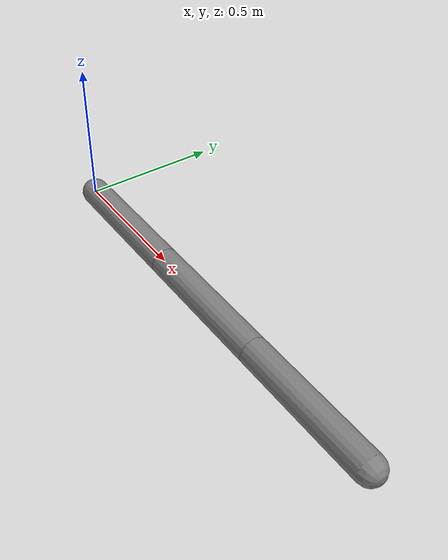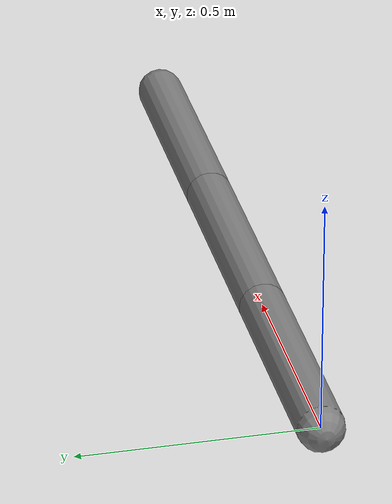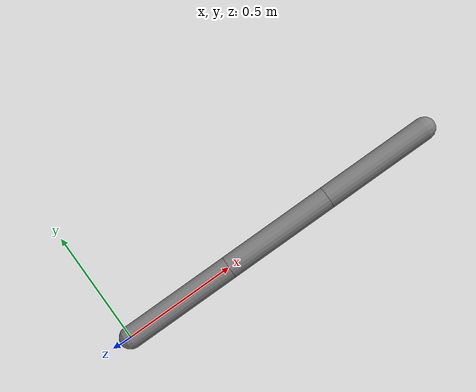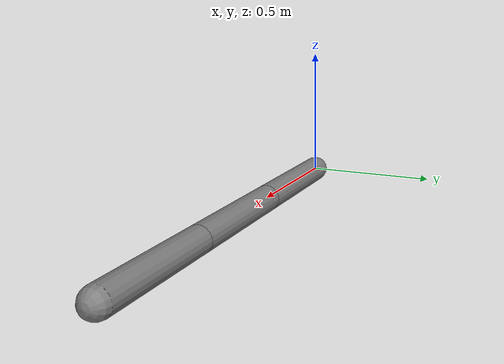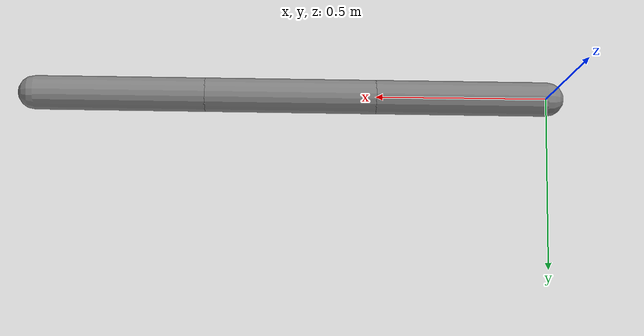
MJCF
<mujoco model="tendon_fixed_attributes">
  <worldbody>
    <body name="body0">
      <joint name="joint0" type="hinge" axis="0 1 0"/>
      <geom type="capsule" size="0.05 0.5" fromto="0 0 0 0.5 0 0"/>
      <body name="body1" pos="0.5 0 0">
        <joint name="joint1" type="hinge" axis="0 1 0"/>
        <geom type="capsule" size="0.05 0.5" fromto="0 0 0 0.5 0 0"/>
        <body name="body2" pos="0.5 0 0">
          <joint name="joint2" type="hinge" axis="0 1 0"/>
          <geom type="capsule" size="0.05 0.5" fromto="0 0 0 0.5 0 0"/>
        </body>
      </body>
    </body>
  </worldbody>
  <tendon>
    <fixed name="custom_tendon"
           actuatorfrclimited="false"
           actuatorfrcrange="0.1 0.2"
           armature="0.3"
           damping="0.4"
           frictionloss="0.5"
           group="1"
           limited="false"
           margin="0.6"
           range="0.7 0.8"
           solimpfriction="0.95 0.96 0.002 0.6 3"
           solimplimit="0.96 0.97 0.003 0.7 4"
           solreffriction="0.03 1.1"
           solreflimit="0.04 1.2"
           springlength="0.95 0.99"
           stiffness="1.1">
      <joint joint="joint0" coef=".1"/>
      <joint joint="joint1" coef=".2"/>
    </fixed>
    <fixed name="default_tendon"
           actuatorfrclimited="auto"
           actuatorfrcrange="0.0 0.0"
           armature="0.0"
           damping="0.0"
           frictionloss="0.0"
           group="0"
           limited="auto"
           margin="0.0"
           range="0.0 0.0"
           solimpfriction="0.9 0.95 0.001 0.5 2"
           solimplimit="0.9 0.95 0.001 0.5 2"
           solreffriction="0.02 1"
           solreflimit="0.02 1"
           springlength="-1 -1"
           stiffness="0.0">
      <joint joint="joint0" coef=".1"/>
      <joint joint="joint2" coef=".2"/>
    </fixed>
  </tendon>
</mujoco>
